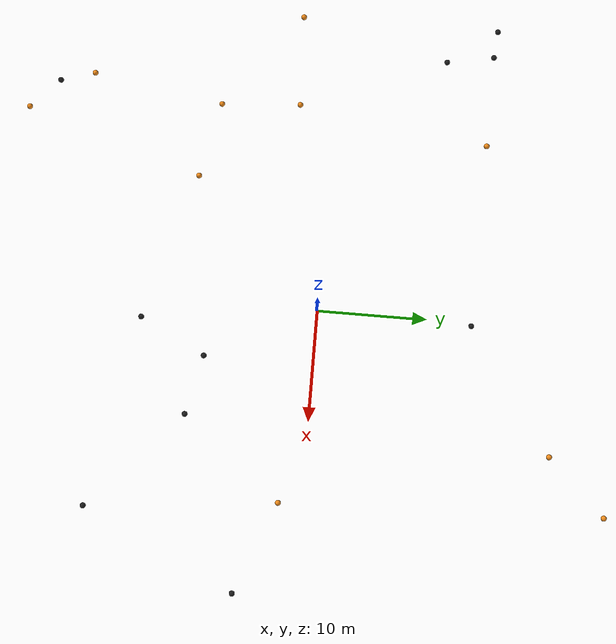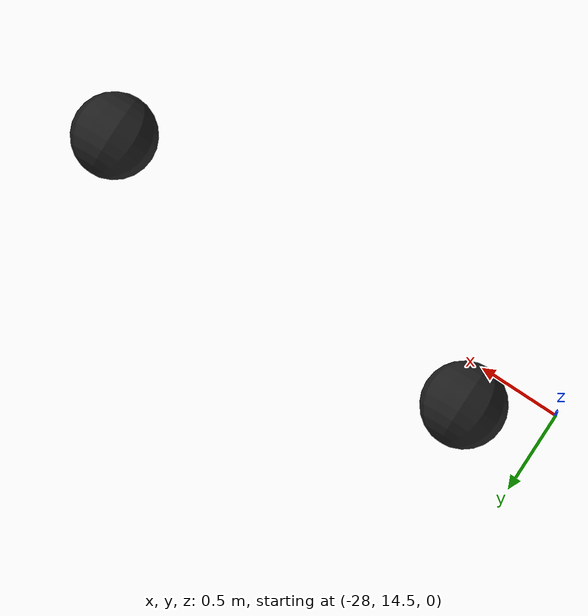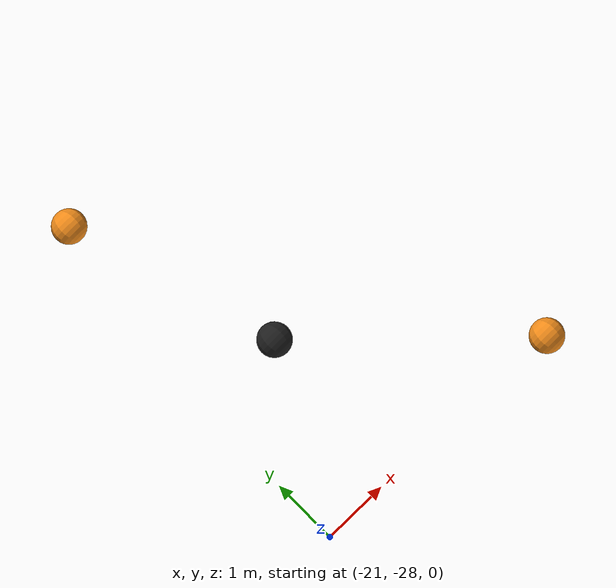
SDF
<?xml version="1.0"?>
<!-- automatically generated by the 'generate_avoid_obstacles_buoys.py' script -->
<sdf version="1.6">
  <model name="obstacles_phase2_1">
    <include>
      <name>mb_round_buoy_orange_0</name>
      <pose>11.41842502065824 21.730615722962682 0.0 0 0 0 </pose>
      <uri>model://mb_round_buoy_orange</uri>
    </include>

    <include>
      <name>mb_round_buoy_orange_1</name>
      <pose>-18.554418184405847 -10.351414651832634 0.0 0 0 0 </pose>
      <uri>model://mb_round_buoy_orange</uri>
    </include>

    <include>
      <name>mb_round_buoy_orange_2</name>
      <pose>-27.502768448127053 -3.4540291506046046 0.0 0 0 0 </pose>
      <uri>model://mb_round_buoy_orange</uri>
    </include>

    <include>
      <name>mb_round_buoy_orange_3</name>
      <pose>17.39675450131478 -2.0937239611786893 0.0 0 0 0 </pose>
      <uri>model://mb_round_buoy_orange</uri>
    </include>

    <include>
      <name>mb_round_buoy_orange_4</name>
      <pose>-16.885622388587013 -28.11154417214834 0.0 0 0 0 </pose>
      <uri>model://mb_round_buoy_orange</uri>
    </include>

    <include>
      <name>mb_round_buoy_orange_5</name>
      <pose>-19.056412380563472 -3.1082076433423644 0.0 0 0 0 </pose>
      <uri>model://mb_round_buoy_orange</uri>
    </include>

    <include>
      <name>mb_round_buoy_orange_6</name>
      <pose>16.399944923390066 26.877873876127673 0.0 0 0 0 </pose>
      <uri>model://mb_round_buoy_orange</uri>
    </include>

    <include>
      <name>mb_round_buoy_orange_7</name>
      <pose>-20.563996045621035 -22.375531258530827 0.0 0 0 0 </pose>
      <uri>model://mb_round_buoy_orange</uri>
    </include>

    <include>
      <name>mb_round_buoy_orange_8</name>
      <pose>-11.629069798144322 -11.850564355402284 0.0 0 0 0 </pose>
      <uri>model://mb_round_buoy_orange</uri>
    </include>

    <include>
      <name>mb_round_buoy_orange_9</name>
      <pose>-16.539221731792896 14.380755568533203 0.0 0 0 0 </pose>
      <uri>model://mb_round_buoy_orange</uri>
    </include>

    <include>
      <name>mb_round_buoy_black_0</name>
      <pose>19.031987965002422 -19.379304925064154 0.0 0 0 0 </pose>
      <uri>model://mb_round_buoy_black</uri>
    </include>

    <include>
      <name>mb_round_buoy_black_1</name>
      <pose>4.867452200770529 -9.88847662433044 0.0 0 0 0 </pose>
      <uri>model://mb_round_buoy_black</uri>
    </include>

    <include>
      <name>mb_round_buoy_black_2</name>
      <pose>-24.231440968324293 10.204439836731027 0.0 0 0 0 </pose>
      <uri>model://mb_round_buoy_black</uri>
    </include>

    <include>
      <name>mb_round_buoy_black_3</name>
      <pose>10.237878722553312 -11.111703206079728 0.0 0 0 0 </pose>
      <uri>model://mb_round_buoy_black</uri>
    </include>

    <include>
      <name>mb_round_buoy_black_4</name>
      <pose>-27.528778971302955 14.734382807456555 0.0 0 0 0 </pose>
      <uri>model://mb_round_buoy_black</uri>
    </include>

    <include>
      <name>mb_round_buoy_black_5</name>
      <pose>-25.0253952366467 14.523373192252677 0.0 0 0 0 </pose>
      <uri>model://mb_round_buoy_black</uri>
    </include>

    <include>
      <name>mb_round_buoy_black_6</name>
      <pose>0.23979640377197597 14.034668495452294 0.0 0 0 0 </pose>
      <uri>model://mb_round_buoy_black</uri>
    </include>

    <include>
      <name>mb_round_buoy_black_7</name>
      <pose>1.8028518796562842 -15.867879077584185 0.0 0 0 0 </pose>
      <uri>model://mb_round_buoy_black</uri>
    </include>

    <include>
      <name>mb_round_buoy_black_8</name>
      <pose>-19.627228239937878 -25.501449131629737 0.0 0 0 0 </pose>
      <uri>model://mb_round_buoy_black</uri>
    </include>

    <include>
      <name>mb_round_buoy_black_9</name>
      <pose>25.57490914027973 -5.471944635977039 0.0 0 0 0 </pose>
      <uri>model://mb_round_buoy_black</uri>
    </include>

  </model>
</sdf>

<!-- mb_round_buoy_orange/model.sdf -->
<sdf version="1.6">
  <model name="mb_round_buoy_orange">
    <link name="link">
      <inertial>
        <pose>0 0 -2 0 0 0</pose>
        <!-- Mass determined based on buoyancy geometry so object
             floats at mid-point of sphere -->
        <mass>3.5</mass>
        <!-- Mark only - based on cylinder -->
        <inertia>
          <ixx>1.0</ixx>
          <ixy>0</ixy>
          <ixz>0</ixz>
          <iyy>1.0</iyy>
          <iyz>0</iyz>
          <izz>0.1</izz>
        </inertia>
      </inertial>
      <collision name="collision">
        <geometry>
          <sphere>
            <radius>0.25</radius>
          </sphere>
        </geometry>
      </collision>
      <visual name="visual">
        <geometry>
	        <mesh><uri>model://mb_round_buoy_orange/meshes/mb_round_buoy.dae</uri></mesh>
        </geometry>
        <material>
          <script>
            <uri>model://mb_round_buoy_orange/materials/scripts/mb_round_buoy.material</uri>
            <name>mb_round_buoy/Orange</name>
          </script>
        </material>
      </visual>
    </link>
    <plugin name="BuoyancyPlugin" filename="libbuoyancy_gazebo_plugin.so">
      <wave_model>ocean_waves</wave_model>
      <fluid_density>1000</fluid_density>
      <fluid_level>0.0</fluid_level>
      <linear_drag>25.0</linear_drag>
      <angular_drag>2.0</angular_drag>
      <buoyancy name="buoyancy_sphere">
        <link_name>link</link_name>
        <pose>0 0 0.02 0 0 0</pose>
        <geometry>
          <sphere>
            <radius>0.235</radius>
          </sphere>
        </geometry>
      </buoyancy>
    </plugin>
  </model>
</sdf>

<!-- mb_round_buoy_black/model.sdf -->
<sdf version="1.6">
  <model name="mb_round_buoy_black">
    <link name="link">
      <inertial>
        <pose>0 0 -2 0 0 0</pose>
        <!-- Mass determined based on buoyancy geometry so object
             floats at mid-point of sphere -->
        <mass>3.5</mass>
        <!-- Mark only - based on cylinder -->
        <inertia>
          <ixx>1.0</ixx>
          <ixy>0</ixy>
          <ixz>0</ixz>
          <iyy>1.0</iyy>
          <iyz>0</iyz>
          <izz>0.1</izz>
        </inertia>
      </inertial>
      <collision name="collision">
        <geometry>
          <sphere>
            <radius>0.25</radius>
          </sphere>
        </geometry>
      </collision>
      <visual name="visual">
        <geometry>
	        <mesh><uri>model://mb_round_buoy_orange/meshes/mb_round_buoy.dae</uri></mesh>
        </geometry>
        <material>
          <script>
            <uri>file://media/materials/scripts/gazebo.material</uri>
            <name>Gazebo/Black</name>
          </script>
        </material>
      </visual>
    </link>
    <plugin name="BuoyancyPlugin" filename="libbuoyancy_gazebo_plugin.so">
      <wave_model>ocean_waves</wave_model>
      <fluid_density>1000</fluid_density>
      <fluid_level>0.0</fluid_level>
      <linear_drag>25.0</linear_drag>
      <angular_drag>2.0</angular_drag>
      <buoyancy name="buoyancy_sphere">
        <link_name>link</link_name>
        <pose>0 0 0.02 0 0 0</pose>
        <geometry>
          <sphere>
            <radius>0.235</radius>
          </sphere>
        </geometry>
      </buoyancy>
    </plugin>
  </model>
</sdf>
